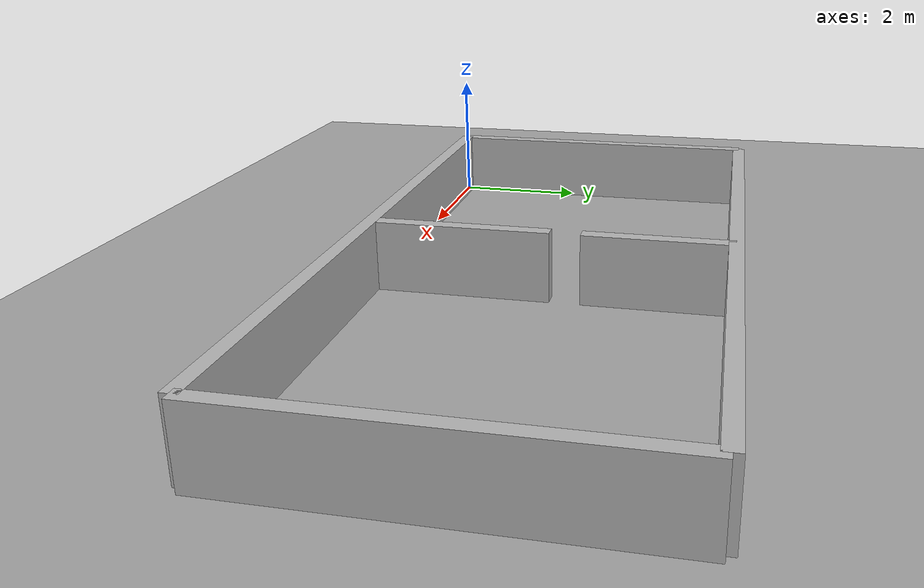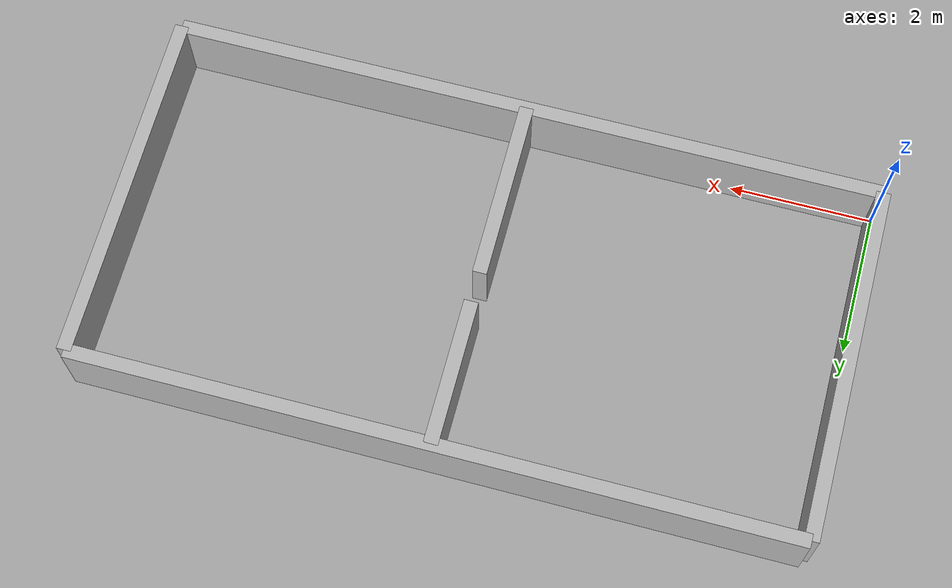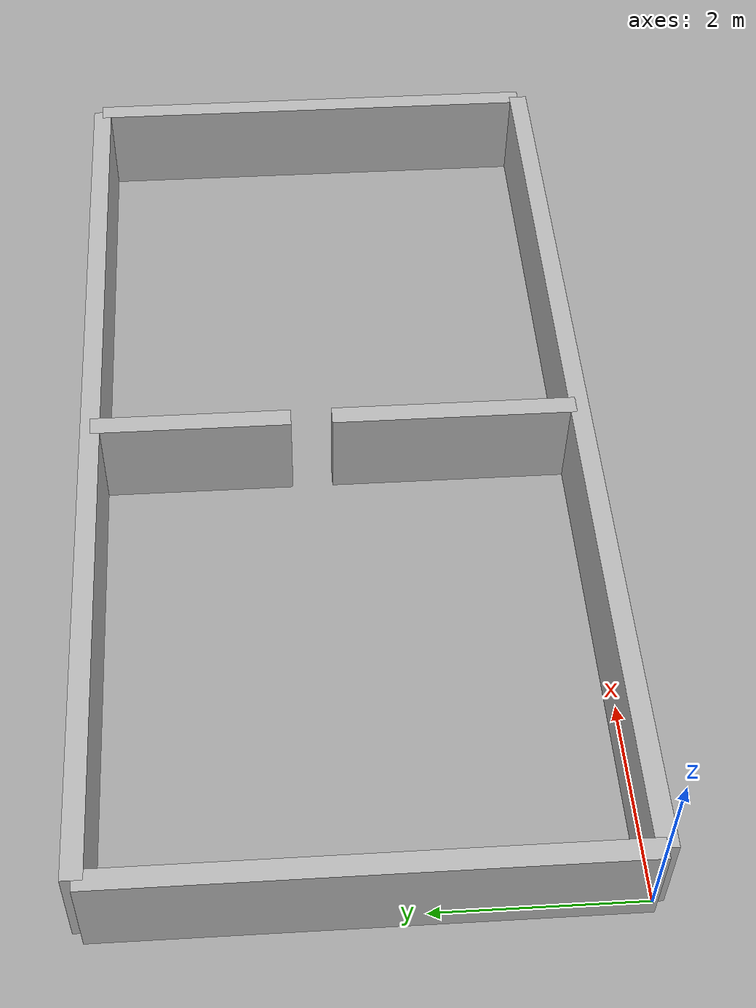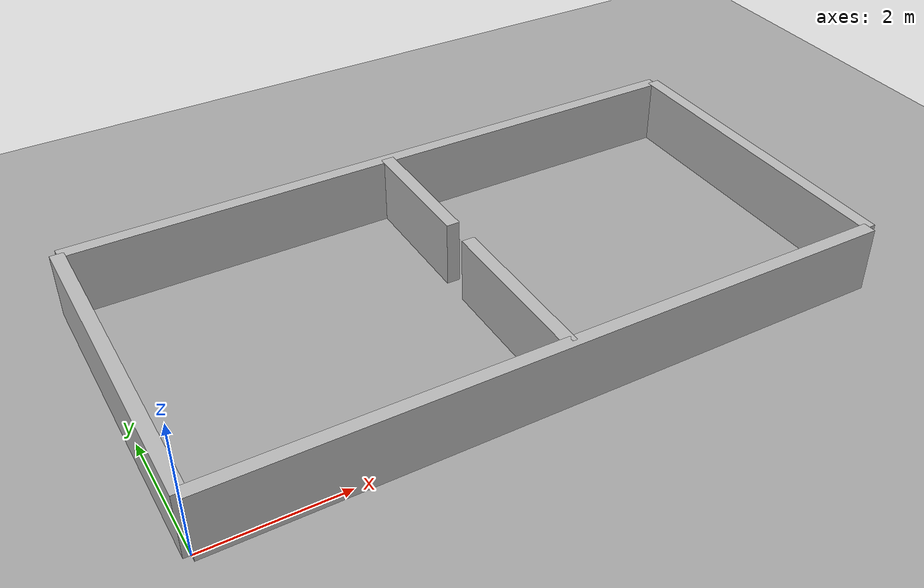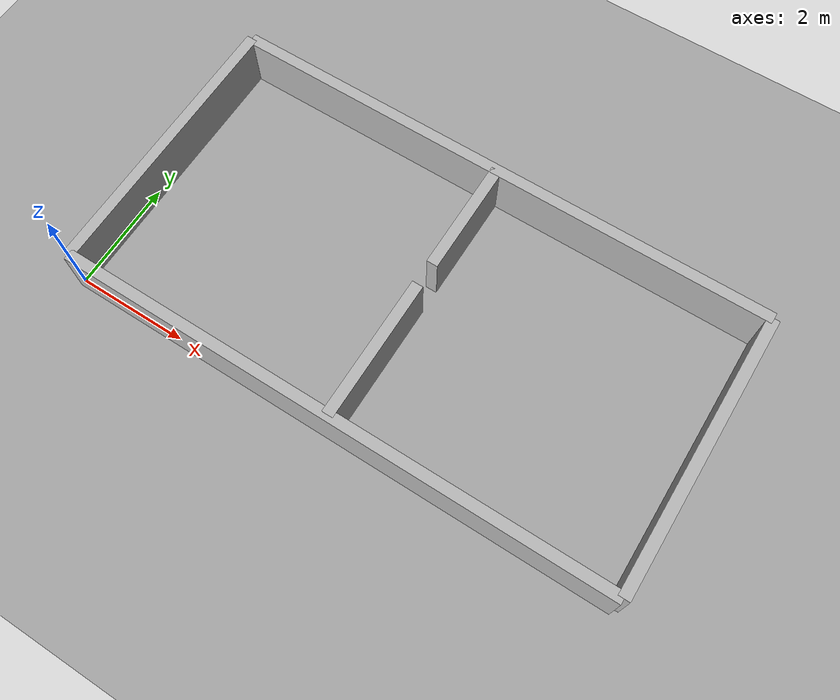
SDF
<sdf version="1.10">
 <world name="indoor_doorway">
  <physics name="physics" type="ignored">
   <max_step_size>0.002</max_step_size>
   <real_time_factor>1</real_time_factor>
  </physics>
  <plugin filename="gz-sim-physics-system" name="gz::sim::systems::Physics"/>
  <plugin filename="gz-sim-user-commands-system" name="gz::sim::systems::UserCommands"/>
  <plugin filename="gz-sim-scene-broadcaster-system" name="gz::sim::systems::SceneBroadcaster"/>
  <plugin filename="gz-sim-sensors-system" name="gz::sim::systems::Sensors">
   <render_engine>ogre2</render_engine>
  </plugin>
  <plugin filename="gz-sim-logical-camera-system" name="gz::sim::systems::LogicalCamera"/>
  <plugin filename="libtopology_joint_system.so" name="modular_robot_gz_plugins::TopologyJointSystem">
   <parent_link>core::base_link</parent_link>
   <command_topic>/topology_joint/command</command_topic>
   <initial_child>core::pod_0::pod_0_base_link</initial_child>
   <initial_child>core::pod_1::pod_1_base_link</initial_child>
   <initial_child>core::pod_2::pod_2_base_link</initial_child>
   <initial_child>core::pod_3::pod_3_base_link</initial_child>
   <initial_child>core::pod_4::pod_4_base_link</initial_child>
   <initial_child>core::pod_5::pod_5_base_link</initial_child>
  </plugin>
  <light name="sun" type="directional">
   <pose>0 0 10 0 0 0</pose>
   <diffuse>0.8 0.8 0.8 1</diffuse>
   <direction>-0.5 0.2 -1</direction>
  </light>
  <model name="ground">
   <static>true</static>
   <link name="link">
    <collision name="collision">
     <geometry><plane><normal>0 0 1</normal><size>20 12</size></plane></geometry>
    </collision>
    <visual name="visual">
     <geometry><plane><normal>0 0 1</normal><size>20 12</size></plane></geometry>
     <material><diffuse>0.65 0.65 0.65 1</diffuse></material>
    </visual>
   </link>
  </model>
  <model name="wall_lower">
   <static>true</static>
   <pose>5 1.27 0.5 0 0 0</pose>
   <link name="link">
    <collision name="collision"><geometry><box><size>0.2 2.54 1</size></box></geometry></collision>
    <visual name="visual"><geometry><box><size>0.2 2.54 1</size></box></geometry></visual>
   </link>
  </model>
  <model name="wall_upper">
   <static>true</static>
   <pose>5 3.98 0.5 0 0 0</pose>
   <link name="link">
    <collision name="collision"><geometry><box><size>0.2 2.04 1</size></box></geometry></collision>
    <visual name="visual"><geometry><box><size>0.2 2.04 1</size></box></geometry></visual>
   </link>
  </model>
  <model name="wall_west">
   <static>true</static>
   <pose>0 2.5 0.5 0 0 0</pose>
   <link name="link">
    <collision name="collision"><geometry><box><size>0.2 5 1</size></box></geometry></collision>
    <visual name="visual"><geometry><box><size>0.2 5 1</size></box></geometry></visual>
   </link>
  </model>
  <model name="wall_east">
   <static>true</static>
   <pose>10 2.5 0.5 0 0 0</pose>
   <link name="link">
    <collision name="collision"><geometry><box><size>0.2 5 1</size></box></geometry></collision>
    <visual name="visual"><geometry><box><size>0.2 5 1</size></box></geometry></visual>
   </link>
  </model>
  <model name="wall_south">
   <static>true</static>
   <pose>5 0 0.5 0 0 0</pose>
   <link name="link">
    <collision name="collision"><geometry><box><size>10 0.2 1</size></box></geometry></collision>
    <visual name="visual"><geometry><box><size>10 0.2 1</size></box></geometry></visual>
   </link>
  </model>
  <model name="wall_north">
   <static>true</static>
   <pose>5 5 0.5 0 0 0</pose>
   <link name="link">
    <collision name="collision"><geometry><box><size>10 0.2 1</size></box></geometry></collision>
    <visual name="visual"><geometry><box><size>10 0.2 1</size></box></geometry></visual>
   </link>
  </model>
 </world>
</sdf>
